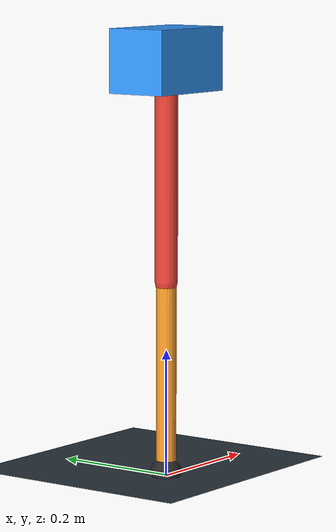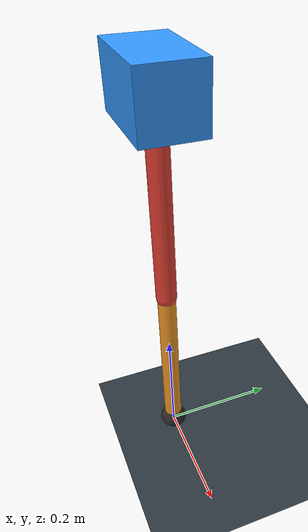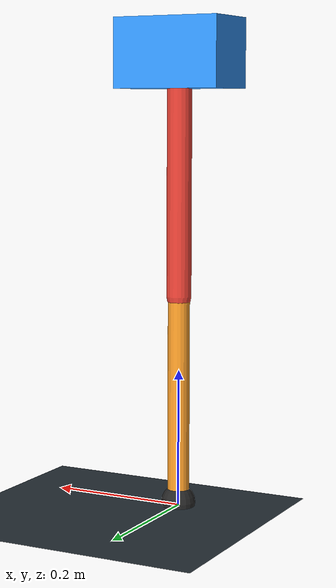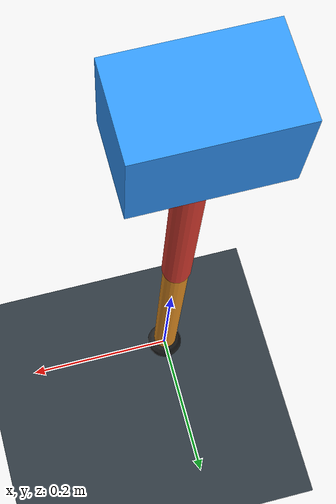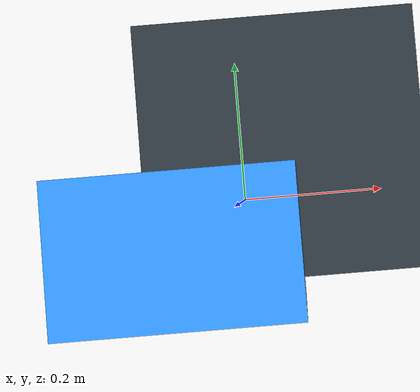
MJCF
<mujoco model="single_axis_two_bar">
  <compiler angle="radian" inertiafromgeom="true"/>
  <option timestep="0.001" integrator="implicitfast" gravity="0 0 -9.81"/>
  <default>
    <joint damping="0.08"/>
    <geom friction="1.2 0.01 0.0001" condim="3"/>
  </default>
  <worldbody>
    <geom name="floor" type="plane" size="5 5 0.1" rgba="0.18 0.22 0.25 1"/>
    <body name="carriage" pos="0 0 0.6557965084621121">
      <joint name="pole_slide" type="slide" axis="0 0 1"/>
      <geom name="payload" type="box" size="0.08 0.05 0.05" mass="2.41653404430563" rgba="0.2 0.6 1 1"/>
      <body name="thigh" pos="0 0 0">
        <joint name="hip" type="hinge" axis="0 1 0"/>
        <geom name="thigh_link" type="capsule" fromto="0 0 0 0 0 -0.347886627187108" size="0.018" mass="0.24787381878701434" rgba="0.9 0.25 0.2 1"/>
        <body name="shank" pos="0 0 -0.347886627187108">
          <joint name="knee" type="hinge" axis="0 1 0"/>
          <geom name="shank_link" type="capsule" fromto="0 0 0 0 0 -0.30241905163981175" size="0.016" mass="0.21547757040856258" rgba="0.95 0.6 0.15 1"/>
          <geom name="foot" type="sphere" pos="0 0 -0.30241905163981175" size="0.025" mass="0.03" rgba="0.15 0.15 0.15 1"/>
          <site name="toe" pos="0 0 -0.30241905163981175" size="0.008"/>
        </body>
      </body>
    </body>
  </worldbody>
  <actuator>
    <motor name="hip_motor" joint="hip" ctrlrange="-18.164454925239678 18.164454925239678"/>
    <motor name="knee_motor" joint="knee" ctrlrange="-31.50822150600791 31.50822150600791"/>
  </actuator>
</mujoco>
